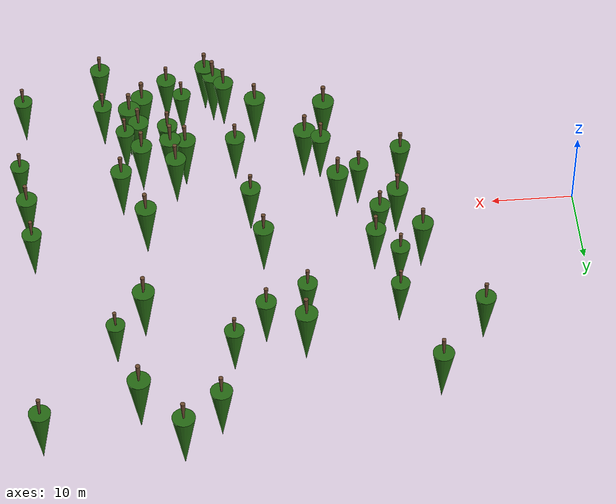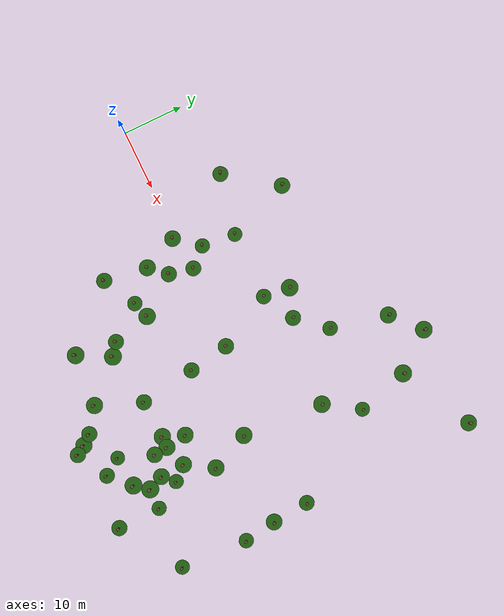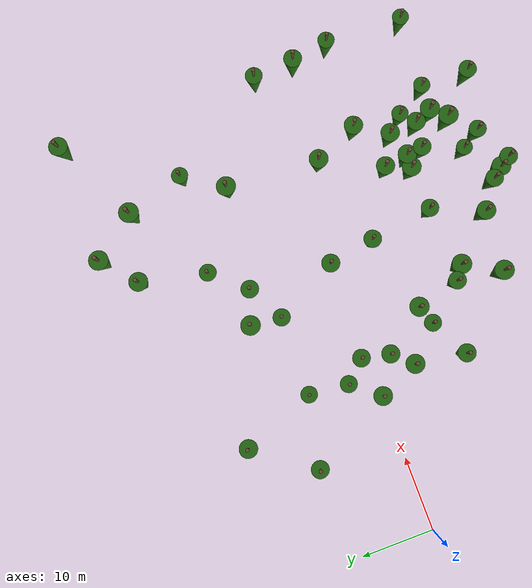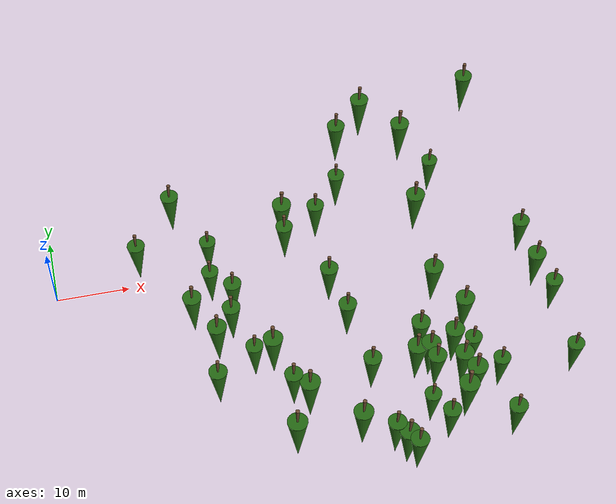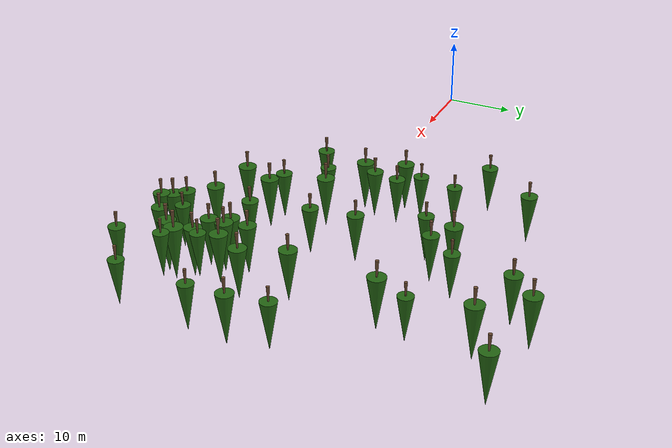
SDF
<sdf version="1.10">
 <model name="lehrforst_trees">
  <static>true</static>
  <link name="tree_0401">
   <collision name="tree_0401_collision">
    <pose>55.010 23.818 -1.102 3.142 0.014 0</pose>
    <geometry><cone><radius>0.288</radius><length>4.608</length></cone></geometry>
   </collision>
   <visual name="tree_0401_trunk">
    <pose>55.010 23.818 -1.102 3.142 0.014 0</pose>
    <geometry><cone><radius>0.288</radius><length>4.608</length></cone></geometry>
    <material>
     <ambient>0.42 0.29 0.19 1</ambient>
     <diffuse>0.42 0.29 0.19 1</diffuse>
     <specular>0.42 0.29 0.19 1</specular>
    </material>
   </visual>
   <visual name="tree_0401_leaves">
    <pose>55.010 23.818 -5.710 3.142 0 0</pose>
    <geometry><cone><radius>1.440</radius><length>8.640</length></cone></geometry>
    <material>
     <ambient>0.14 0.40 0.07 1</ambient>
     <diffuse>0.14 0.40 0.07 1</diffuse>
     <specular>0.14 0.40 0.07 1</specular>
    </material>
   </visual>
  </link>
  <link name="tree_0402">
   <collision name="tree_0402_collision">
    <pose>31.808 -17.876 -3.462 3.142 0.002 0</pose>
    <geometry><cone><radius>0.288</radius><length>4.608</length></cone></geometry>
   </collision>
   <visual name="tree_0402_trunk">
    <pose>31.808 -17.876 -3.462 3.142 0.002 0</pose>
    <geometry><cone><radius>0.288</radius><length>4.608</length></cone></geometry>
    <material>
     <ambient>0.42 0.29 0.19 1</ambient>
     <diffuse>0.42 0.29 0.19 1</diffuse>
     <specular>0.42 0.29 0.19 1</specular>
    </material>
   </visual>
   <visual name="tree_0402_leaves">
    <pose>31.808 -17.876 -8.070 3.142 0 0</pose>
    <geometry><cone><radius>1.440</radius><length>8.640</length></cone></geometry>
    <material>
     <ambient>0.14 0.40 0.07 1</ambient>
     <diffuse>0.14 0.40 0.07 1</diffuse>
     <specular>0.14 0.40 0.07 1</specular>
    </material>
   </visual>
  </link>
  <link name="tree_0405">
   <collision name="tree_0405_collision">
    <pose>28.887 -23.378 -3.951 3.142 0.013 0</pose>
    <geometry><cone><radius>0.287</radius><length>4.592</length></cone></geometry>
   </collision>
   <visual name="tree_0405_trunk">
    <pose>28.887 -23.378 -3.951 3.142 0.013 0</pose>
    <geometry><cone><radius>0.287</radius><length>4.592</length></cone></geometry>
    <material>
     <ambient>0.42 0.29 0.19 1</ambient>
     <diffuse>0.42 0.29 0.19 1</diffuse>
     <specular>0.42 0.29 0.19 1</specular>
    </material>
   </visual>
   <visual name="tree_0405_leaves">
    <pose>28.887 -23.378 -8.543 3.142 0 0</pose>
    <geometry><cone><radius>1.435</radius><length>8.610</length></cone></geometry>
    <material>
     <ambient>0.14 0.40 0.07 1</ambient>
     <diffuse>0.14 0.40 0.07 1</diffuse>
     <specular>0.14 0.40 0.07 1</specular>
    </material>
   </visual>
  </link>
  <link name="tree_0406">
   <collision name="tree_0406_collision">
    <pose>54.115 -21.471 -1.346 3.142 0.004 0</pose>
    <geometry><cone><radius>0.287</radius><length>4.592</length></cone></geometry>
   </collision>
   <visual name="tree_0406_trunk">
    <pose>54.115 -21.471 -1.346 3.142 0.004 0</pose>
    <geometry><cone><radius>0.287</radius><length>4.592</length></cone></geometry>
    <material>
     <ambient>0.42 0.29 0.19 1</ambient>
     <diffuse>0.42 0.29 0.19 1</diffuse>
     <specular>0.42 0.29 0.19 1</specular>
    </material>
   </visual>
   <visual name="tree_0406_leaves">
    <pose>54.115 -21.471 -5.938 3.142 0 0</pose>
    <geometry><cone><radius>1.435</radius><length>8.610</length></cone></geometry>
    <material>
     <ambient>0.14 0.40 0.07 1</ambient>
     <diffuse>0.14 0.40 0.07 1</diffuse>
     <specular>0.14 0.40 0.07 1</specular>
    </material>
   </visual>
  </link>
  <link name="tree_0408">
   <collision name="tree_0408_collision">
    <pose>52.384 -23.703 -1.653 3.142 0.012 0</pose>
    <geometry><cone><radius>0.287</radius><length>4.592</length></cone></geometry>
   </collision>
   <visual name="tree_0408_trunk">
    <pose>52.384 -23.703 -1.653 3.142 0.012 0</pose>
    <geometry><cone><radius>0.287</radius><length>4.592</length></cone></geometry>
    <material>
     <ambient>0.42 0.29 0.19 1</ambient>
     <diffuse>0.42 0.29 0.19 1</diffuse>
     <specular>0.42 0.29 0.19 1</specular>
    </material>
   </visual>
   <visual name="tree_0408_leaves">
    <pose>52.384 -23.703 -6.245 3.142 0 0</pose>
    <geometry><cone><radius>1.435</radius><length>8.610</length></cone></geometry>
    <material>
     <ambient>0.14 0.40 0.07 1</ambient>
     <diffuse>0.14 0.40 0.07 1</diffuse>
     <specular>0.14 0.40 0.07 1</specular>
    </material>
   </visual>
  </link>
  <link name="tree_0410">
   <collision name="tree_0410_collision">
    <pose>34.213 13.357 -3.132 3.142 0.036 0</pose>
    <geometry><cone><radius>0.285</radius><length>4.560</length></cone></geometry>
   </collision>
   <visual name="tree_0410_trunk">
    <pose>34.213 13.357 -3.132 3.142 0.036 0</pose>
    <geometry><cone><radius>0.285</radius><length>4.560</length></cone></geometry>
    <material>
     <ambient>0.42 0.29 0.19 1</ambient>
     <diffuse>0.42 0.29 0.19 1</diffuse>
     <specular>0.42 0.29 0.19 1</specular>
    </material>
   </visual>
   <visual name="tree_0410_leaves">
    <pose>34.213 13.357 -7.692 3.142 0 0</pose>
    <geometry><cone><radius>1.425</radius><length>8.550</length></cone></geometry>
    <material>
     <ambient>0.14 0.40 0.07 1</ambient>
     <diffuse>0.14 0.40 0.07 1</diffuse>
     <specular>0.14 0.40 0.07 1</specular>
    </material>
   </visual>
  </link>
  <link name="tree_0420">
   <collision name="tree_0420_collision">
    <pose>28.259 -9.927 -3.303 3.142 0.004 0</pose>
    <geometry><cone><radius>0.282</radius><length>4.512</length></cone></geometry>
   </collision>
   <visual name="tree_0420_trunk">
    <pose>28.259 -9.927 -3.303 3.142 0.004 0</pose>
    <geometry><cone><radius>0.282</radius><length>4.512</length></cone></geometry>
    <material>
     <ambient>0.42 0.29 0.19 1</ambient>
     <diffuse>0.42 0.29 0.19 1</diffuse>
     <specular>0.42 0.29 0.19 1</specular>
    </material>
   </visual>
   <visual name="tree_0420_leaves">
    <pose>28.259 -9.927 -7.815 3.142 0 0</pose>
    <geometry><cone><radius>1.410</radius><length>8.460</length></cone></geometry>
    <material>
     <ambient>0.14 0.40 0.07 1</ambient>
     <diffuse>0.14 0.40 0.07 1</diffuse>
     <specular>0.14 0.40 0.07 1</specular>
    </material>
   </visual>
  </link>
  <link name="tree_0421">
   <collision name="tree_0421_collision">
    <pose>50.062 29.993 -0.977 3.142 0.021 0</pose>
    <geometry><cone><radius>0.282</radius><length>4.512</length></cone></geometry>
   </collision>
   <visual name="tree_0421_trunk">
    <pose>50.062 29.993 -0.977 3.142 0.021 0</pose>
    <geometry><cone><radius>0.282</radius><length>4.512</length></cone></geometry>
    <material>
     <ambient>0.42 0.29 0.19 1</ambient>
     <diffuse>0.42 0.29 0.19 1</diffuse>
     <specular>0.42 0.29 0.19 1</specular>
    </material>
   </visual>
   <visual name="tree_0421_leaves">
    <pose>50.062 29.993 -5.489 3.142 0 0</pose>
    <geometry><cone><radius>1.410</radius><length>8.460</length></cone></geometry>
    <material>
     <ambient>0.14 0.40 0.07 1</ambient>
     <diffuse>0.14 0.40 0.07 1</diffuse>
     <specular>0.14 0.40 0.07 1</specular>
    </material>
   </visual>
  </link>
  <link name="tree_0422">
   <collision name="tree_0422_collision">
    <pose>53.797 9.711 -1.485 3.142 0.003 0</pose>
    <geometry><cone><radius>0.281</radius><length>4.496</length></cone></geometry>
   </collision>
   <visual name="tree_0422_trunk">
    <pose>53.797 9.711 -1.485 3.142 0.003 0</pose>
    <geometry><cone><radius>0.281</radius><length>4.496</length></cone></geometry>
    <material>
     <ambient>0.42 0.29 0.19 1</ambient>
     <diffuse>0.42 0.29 0.19 1</diffuse>
     <specular>0.42 0.29 0.19 1</specular>
    </material>
   </visual>
   <visual name="tree_0422_leaves">
    <pose>53.797 9.711 -5.981 3.142 0 0</pose>
    <geometry><cone><radius>1.405</radius><length>8.430</length></cone></geometry>
    <material>
     <ambient>0.14 0.40 0.07 1</ambient>
     <diffuse>0.14 0.40 0.07 1</diffuse>
     <specular>0.14 0.40 0.07 1</specular>
    </material>
   </visual>
  </link>
  <link name="tree_0426">
   <collision name="tree_0426_collision">
    <pose>42.952 -28.404 -3.038 3.142 0.034 0</pose>
    <geometry><cone><radius>0.280</radius><length>4.480</length></cone></geometry>
   </collision>
   <visual name="tree_0426_trunk">
    <pose>42.952 -28.404 -3.038 3.142 0.034 0</pose>
    <geometry><cone><radius>0.280</radius><length>4.480</length></cone></geometry>
    <material>
     <ambient>0.42 0.29 0.19 1</ambient>
     <diffuse>0.42 0.29 0.19 1</diffuse>
     <specular>0.42 0.29 0.19 1</specular>
    </material>
   </visual>
   <visual name="tree_0426_leaves">
    <pose>42.952 -28.404 -7.518 3.142 0 0</pose>
    <geometry><cone><radius>1.400</radius><length>8.400</length></cone></geometry>
    <material>
     <ambient>0.14 0.40 0.07 1</ambient>
     <diffuse>0.14 0.40 0.07 1</diffuse>
     <specular>0.14 0.40 0.07 1</specular>
    </material>
   </visual>
  </link>
  <link name="tree_0428">
   <collision name="tree_0428_collision">
    <pose>47.256 -16.093 -2.159 3.142 0.014 0</pose>
    <geometry><cone><radius>0.278</radius><length>4.448</length></cone></geometry>
   </collision>
   <visual name="tree_0428_trunk">
    <pose>47.256 -16.093 -2.159 3.142 0.014 0</pose>
    <geometry><cone><radius>0.278</radius><length>4.448</length></cone></geometry>
    <material>
     <ambient>0.42 0.29 0.19 1</ambient>
     <diffuse>0.42 0.29 0.19 1</diffuse>
     <specular>0.42 0.29 0.19 1</specular>
    </material>
   </visual>
   <visual name="tree_0428_leaves">
    <pose>47.256 -16.093 -6.607 3.142 0 0</pose>
    <geometry><cone><radius>1.390</radius><length>8.340</length></cone></geometry>
    <material>
     <ambient>0.14 0.40 0.07 1</ambient>
     <diffuse>0.14 0.40 0.07 1</diffuse>
     <specular>0.14 0.40 0.07 1</specular>
    </material>
   </visual>
  </link>
  <link name="tree_0431">
   <collision name="tree_0431_collision">
    <pose>37.771 -24.047 -3.336 3.142 0.031 0</pose>
    <geometry><cone><radius>0.277</radius><length>4.432</length></cone></geometry>
   </collision>
   <visual name="tree_0431_trunk">
    <pose>37.771 -24.047 -3.336 3.142 0.031 0</pose>
    <geometry><cone><radius>0.277</radius><length>4.432</length></cone></geometry>
    <material>
     <ambient>0.42 0.29 0.19 1</ambient>
     <diffuse>0.42 0.29 0.19 1</diffuse>
     <specular>0.42 0.29 0.19 1</specular>
    </material>
   </visual>
   <visual name="tree_0431_leaves">
    <pose>37.771 -24.047 -7.768 3.142 0 0</pose>
    <geometry><cone><radius>1.385</radius><length>8.310</length></cone></geometry>
    <material>
     <ambient>0.14 0.40 0.07 1</ambient>
     <diffuse>0.14 0.40 0.07 1</diffuse>
     <specular>0.14 0.40 0.07 1</specular>
    </material>
   </visual>
  </link>
  <link name="tree_0437">
   <collision name="tree_0437_collision">
    <pose>52.835 -3.960 -1.344 3.142 0.037 0</pose>
    <geometry><cone><radius>0.276</radius><length>4.416</length></cone></geometry>
   </collision>
   <visual name="tree_0437_trunk">
    <pose>52.835 -3.960 -1.344 3.142 0.037 0</pose>
    <geometry><cone><radius>0.276</radius><length>4.416</length></cone></geometry>
    <material>
     <ambient>0.42 0.29 0.19 1</ambient>
     <diffuse>0.42 0.29 0.19 1</diffuse>
     <specular>0.42 0.29 0.19 1</specular>
    </material>
   </visual>
   <visual name="tree_0437_leaves">
    <pose>52.835 -3.960 -5.760 3.142 0 0</pose>
    <geometry><cone><radius>1.380</radius><length>8.280</length></cone></geometry>
    <material>
     <ambient>0.14 0.40 0.07 1</ambient>
     <diffuse>0.14 0.40 0.07 1</diffuse>
     <specular>0.14 0.40 0.07 1</specular>
    </material>
   </visual>
  </link>
  <link name="tree_0439">
   <collision name="tree_0439_collision">
    <pose>21.001 -6.414 -3.221 3.142 0.031 0</pose>
    <geometry><cone><radius>0.276</radius><length>4.416</length></cone></geometry>
   </collision>
   <visual name="tree_0439_trunk">
    <pose>21.001 -6.414 -3.221 3.142 0.031 0</pose>
    <geometry><cone><radius>0.276</radius><length>4.416</length></cone></geometry>
    <material>
     <ambient>0.42 0.29 0.19 1</ambient>
     <diffuse>0.42 0.29 0.19 1</diffuse>
     <specular>0.42 0.29 0.19 1</specular>
    </material>
   </visual>
   <visual name="tree_0439_leaves">
    <pose>21.001 -6.414 -7.637 3.142 0 0</pose>
    <geometry><cone><radius>1.380</radius><length>8.280</length></cone></geometry>
    <material>
     <ambient>0.14 0.40 0.07 1</ambient>
     <diffuse>0.14 0.40 0.07 1</diffuse>
     <specular>0.14 0.40 0.07 1</specular>
    </material>
   </visual>
  </link>
  <link name="tree_0445">
   <collision name="tree_0445_collision">
    <pose>49.154 -16.143 -1.915 3.142 0.010 0</pose>
    <geometry><cone><radius>0.274</radius><length>4.384</length></cone></geometry>
   </collision>
   <visual name="tree_0445_trunk">
    <pose>49.154 -16.143 -1.915 3.142 0.010 0</pose>
    <geometry><cone><radius>0.274</radius><length>4.384</length></cone></geometry>
    <material>
     <ambient>0.42 0.29 0.19 1</ambient>
     <diffuse>0.42 0.29 0.19 1</diffuse>
     <specular>0.42 0.29 0.19 1</specular>
    </material>
   </visual>
   <visual name="tree_0445_leaves">
    <pose>49.154 -16.143 -6.299 3.142 0 0</pose>
    <geometry><cone><radius>1.370</radius><length>8.220</length></cone></geometry>
    <material>
     <ambient>0.14 0.40 0.07 1</ambient>
     <diffuse>0.14 0.40 0.07 1</diffuse>
     <specular>0.14 0.40 0.07 1</specular>
    </material>
   </visual>
  </link>
  <link name="tree_0446">
   <collision name="tree_0446_collision">
    <pose>45.372 25.881 -1.613 3.142 0.019 0</pose>
    <geometry><cone><radius>0.273</radius><length>4.368</length></cone></geometry>
   </collision>
   <visual name="tree_0446_trunk">
    <pose>45.372 25.881 -1.613 3.142 0.019 0</pose>
    <geometry><cone><radius>0.273</radius><length>4.368</length></cone></geometry>
    <material>
     <ambient>0.42 0.29 0.19 1</ambient>
     <diffuse>0.42 0.29 0.19 1</diffuse>
     <specular>0.42 0.29 0.19 1</specular>
    </material>
   </visual>
   <visual name="tree_0446_leaves">
    <pose>45.372 25.881 -5.981 3.142 0 0</pose>
    <geometry><cone><radius>1.365</radius><length>8.190</length></cone></geometry>
    <material>
     <ambient>0.14 0.40 0.07 1</ambient>
     <diffuse>0.14 0.40 0.07 1</diffuse>
     <specular>0.14 0.40 0.07 1</specular>
    </material>
   </visual>
  </link>
  <link name="tree_0450">
   <collision name="tree_0450_collision">
    <pose>52.846 -14.900 -1.543 3.142 0.002 0</pose>
    <geometry><cone><radius>0.272</radius><length>4.352</length></cone></geometry>
   </collision>
   <visual name="tree_0450_trunk">
    <pose>52.846 -14.900 -1.543 3.142 0.002 0</pose>
    <geometry><cone><radius>0.272</radius><length>4.352</length></cone></geometry>
    <material>
     <ambient>0.42 0.29 0.19 1</ambient>
     <diffuse>0.42 0.29 0.19 1</diffuse>
     <specular>0.42 0.29 0.19 1</specular>
    </material>
   </visual>
   <visual name="tree_0450_leaves">
    <pose>52.846 -14.900 -5.895 3.142 0 0</pose>
    <geometry><cone><radius>1.360</radius><length>8.160</length></cone></geometry>
    <material>
     <ambient>0.14 0.40 0.07 1</ambient>
     <diffuse>0.14 0.40 0.07 1</diffuse>
     <specular>0.14 0.40 0.07 1</specular>
    </material>
   </visual>
  </link>
  <link name="tree_0452">
   <collision name="tree_0452_collision">
    <pose>55.614 -10.321 -1.199 3.142 0.025 0</pose>
    <geometry><cone><radius>0.272</radius><length>4.352</length></cone></geometry>
   </collision>
   <visual name="tree_0452_trunk">
    <pose>55.614 -10.321 -1.199 3.142 0.025 0</pose>
    <geometry><cone><radius>0.272</radius><length>4.352</length></cone></geometry>
    <material>
     <ambient>0.42 0.29 0.19 1</ambient>
     <diffuse>0.42 0.29 0.19 1</diffuse>
     <specular>0.42 0.29 0.19 1</specular>
    </material>
   </visual>
   <visual name="tree_0452_leaves">
    <pose>55.614 -10.321 -5.551 3.142 0 0</pose>
    <geometry><cone><radius>1.360</radius><length>8.160</length></cone></geometry>
    <material>
     <ambient>0.14 0.40 0.07 1</ambient>
     <diffuse>0.14 0.40 0.07 1</diffuse>
     <specular>0.14 0.40 0.07 1</specular>
    </material>
   </visual>
  </link>
  <link name="tree_0454">
   <collision name="tree_0454_collision">
    <pose>18.416 -0.568 -3.472 3.142 0.028 0</pose>
    <geometry><cone><radius>0.271</radius><length>4.336</length></cone></geometry>
   </collision>
   <visual name="tree_0454_trunk">
    <pose>18.416 -0.568 -3.472 3.142 0.028 0</pose>
    <geometry><cone><radius>0.271</radius><length>4.336</length></cone></geometry>
    <material>
     <ambient>0.42 0.29 0.19 1</ambient>
     <diffuse>0.42 0.29 0.19 1</diffuse>
     <specular>0.42 0.29 0.19 1</specular>
    </material>
   </visual>
   <visual name="tree_0454_leaves">
    <pose>18.416 -0.568 -7.808 3.142 0 0</pose>
    <geometry><cone><radius>1.355</radius><length>8.130</length></cone></geometry>
    <material>
     <ambient>0.14 0.40 0.07 1</ambient>
     <diffuse>0.14 0.40 0.07 1</diffuse>
     <specular>0.14 0.40 0.07 1</specular>
    </material>
   </visual>
  </link>
  <link name="tree_0459">
   <collision name="tree_0459_collision">
    <pose>18.152 19.706 -4.663 3.142 0.035 0</pose>
    <geometry><cone><radius>0.269</radius><length>4.304</length></cone></geometry>
   </collision>
   <visual name="tree_0459_trunk">
    <pose>18.152 19.706 -4.663 3.142 0.035 0</pose>
    <geometry><cone><radius>0.269</radius><length>4.304</length></cone></geometry>
    <material>
     <ambient>0.42 0.29 0.19 1</ambient>
     <diffuse>0.42 0.29 0.19 1</diffuse>
     <specular>0.42 0.29 0.19 1</specular>
    </material>
   </visual>
   <visual name="tree_0459_leaves">
    <pose>18.152 19.706 -8.967 3.142 0 0</pose>
    <geometry><cone><radius>1.345</radius><length>8.070</length></cone></geometry>
    <material>
     <ambient>0.14 0.40 0.07 1</ambient>
     <diffuse>0.14 0.40 0.07 1</diffuse>
     <specular>0.14 0.40 0.07 1</specular>
    </material>
   </visual>
  </link>
  <link name="tree_0460">
   <collision name="tree_0460_collision">
    <pose>48.636 -12.577 -1.810 3.142 0.025 0</pose>
    <geometry><cone><radius>0.268</radius><length>4.288</length></cone></geometry>
   </collision>
   <visual name="tree_0460_trunk">
    <pose>48.636 -12.577 -1.810 3.142 0.025 0</pose>
    <geometry><cone><radius>0.268</radius><length>4.288</length></cone></geometry>
    <material>
     <ambient>0.42 0.29 0.19 1</ambient>
     <diffuse>0.42 0.29 0.19 1</diffuse>
     <specular>0.42 0.29 0.19 1</specular>
    </material>
   </visual>
   <visual name="tree_0460_leaves">
    <pose>48.636 -12.577 -6.098 3.142 0 0</pose>
    <geometry><cone><radius>1.340</radius><length>8.040</length></cone></geometry>
    <material>
     <ambient>0.14 0.40 0.07 1</ambient>
     <diffuse>0.14 0.40 0.07 1</diffuse>
     <specular>0.14 0.40 0.07 1</specular>
    </material>
   </visual>
  </link>
  <link name="tree_0464">
   <collision name="tree_0464_collision">
    <pose>53.045 -18.956 -1.395 3.142 0.033 0</pose>
    <geometry><cone><radius>0.268</radius><length>4.288</length></cone></geometry>
   </collision>
   <visual name="tree_0464_trunk">
    <pose>53.045 -18.956 -1.395 3.142 0.033 0</pose>
    <geometry><cone><radius>0.268</radius><length>4.288</length></cone></geometry>
    <material>
     <ambient>0.42 0.29 0.19 1</ambient>
     <diffuse>0.42 0.29 0.19 1</diffuse>
     <specular>0.42 0.29 0.19 1</specular>
    </material>
   </visual>
   <visual name="tree_0464_leaves">
    <pose>53.045 -18.956 -5.683 3.142 0 0</pose>
    <geometry><cone><radius>1.340</radius><length>8.040</length></cone></geometry>
    <material>
     <ambient>0.14 0.40 0.07 1</ambient>
     <diffuse>0.14 0.40 0.07 1</diffuse>
     <specular>0.14 0.40 0.07 1</specular>
    </material>
   </visual>
  </link>
  <link name="tree_0466">
   <collision name="tree_0466_collision">
    <pose>66.700 29.633 1.071 3.142 0.003 0</pose>
    <geometry><cone><radius>0.267</radius><length>4.272</length></cone></geometry>
   </collision>
   <visual name="tree_0466_trunk">
    <pose>66.700 29.633 1.071 3.142 0.003 0</pose>
    <geometry><cone><radius>0.267</radius><length>4.272</length></cone></geometry>
    <material>
     <ambient>0.42 0.29 0.19 1</ambient>
     <diffuse>0.42 0.29 0.19 1</diffuse>
     <specular>0.42 0.29 0.19 1</specular>
    </material>
   </visual>
   <visual name="tree_0466_leaves">
    <pose>66.700 29.633 -3.201 3.142 0 0</pose>
    <geometry><cone><radius>1.335</radius><length>8.010</length></cone></geometry>
    <material>
     <ambient>0.14 0.40 0.07 1</ambient>
     <diffuse>0.14 0.40 0.07 1</diffuse>
     <specular>0.14 0.40 0.07 1</specular>
    </material>
   </visual>
  </link>
  <link name="tree_0474">
   <collision name="tree_0474_collision">
    <pose>67.517 -5.567 -0.213 3.142 0.034 0</pose>
    <geometry><cone><radius>0.265</radius><length>4.240</length></cone></geometry>
   </collision>
   <visual name="tree_0474_trunk">
    <pose>67.517 -5.567 -0.213 3.142 0.034 0</pose>
    <geometry><cone><radius>0.265</radius><length>4.240</length></cone></geometry>
    <material>
     <ambient>0.42 0.29 0.19 1</ambient>
     <diffuse>0.42 0.29 0.19 1</diffuse>
     <specular>0.42 0.29 0.19 1</specular>
    </material>
   </visual>
   <visual name="tree_0474_leaves">
    <pose>67.517 -5.567 -4.453 3.142 0 0</pose>
    <geometry><cone><radius>1.325</radius><length>7.950</length></cone></geometry>
    <material>
     <ambient>0.14 0.40 0.07 1</ambient>
     <diffuse>0.14 0.40 0.07 1</diffuse>
     <specular>0.14 0.40 0.07 1</specular>
    </material>
   </visual>
  </link>
  <link name="tree_0475">
   <collision name="tree_0475_collision">
    <pose>38.407 -0.325 -2.389 3.142 0.004 0</pose>
    <geometry><cone><radius>0.264</radius><length>4.224</length></cone></geometry>
   </collision>
   <visual name="tree_0475_trunk">
    <pose>38.407 -0.325 -2.389 3.142 0.004 0</pose>
    <geometry><cone><radius>0.264</radius><length>4.224</length></cone></geometry>
    <material>
     <ambient>0.42 0.29 0.19 1</ambient>
     <diffuse>0.42 0.29 0.19 1</diffuse>
     <specular>0.42 0.29 0.19 1</specular>
    </material>
   </visual>
   <visual name="tree_0475_leaves">
    <pose>38.407 -0.325 -6.613 3.142 0 0</pose>
    <geometry><cone><radius>1.320</radius><length>7.920</length></cone></geometry>
    <material>
     <ambient>0.14 0.40 0.07 1</ambient>
     <diffuse>0.14 0.40 0.07 1</diffuse>
     <specular>0.14 0.40 0.07 1</specular>
    </material>
   </visual>
  </link>
  <link name="tree_0478">
   <collision name="tree_0478_collision">
    <pose>49.375 -18.440 -1.707 3.142 0.008 0</pose>
    <geometry><cone><radius>0.263</radius><length>4.208</length></cone></geometry>
   </collision>
   <visual name="tree_0478_trunk">
    <pose>49.375 -18.440 -1.707 3.142 0.008 0</pose>
    <geometry><cone><radius>0.263</radius><length>4.208</length></cone></geometry>
    <material>
     <ambient>0.42 0.29 0.19 1</ambient>
     <diffuse>0.42 0.29 0.19 1</diffuse>
     <specular>0.42 0.29 0.19 1</specular>
    </material>
   </visual>
   <visual name="tree_0478_leaves">
    <pose>49.375 -18.440 -5.915 3.142 0 0</pose>
    <geometry><cone><radius>1.315</radius><length>7.890</length></cone></geometry>
    <material>
     <ambient>0.14 0.40 0.07 1</ambient>
     <diffuse>0.14 0.40 0.07 1</diffuse>
     <specular>0.14 0.40 0.07 1</specular>
    </material>
   </visual>
  </link>
  <link name="tree_0482">
   <collision name="tree_0482_collision">
    <pose>23.525 -3.666 -3.075 3.142 0.018 0</pose>
    <geometry><cone><radius>0.262</radius><length>4.192</length></cone></geometry>
   </collision>
   <visual name="tree_0482_trunk">
    <pose>23.525 -3.666 -3.075 3.142 0.018 0</pose>
    <geometry><cone><radius>0.262</radius><length>4.192</length></cone></geometry>
    <material>
     <ambient>0.42 0.29 0.19 1</ambient>
     <diffuse>0.42 0.29 0.19 1</diffuse>
     <specular>0.42 0.29 0.19 1</specular>
    </material>
   </visual>
   <visual name="tree_0482_leaves">
    <pose>23.525 -3.666 -7.267 3.142 0 0</pose>
    <geometry><cone><radius>1.310</radius><length>7.860</length></cone></geometry>
    <material>
     <ambient>0.14 0.40 0.07 1</ambient>
     <diffuse>0.14 0.40 0.07 1</diffuse>
     <specular>0.14 0.40 0.07 1</specular>
    </material>
   </visual>
  </link>
  <link name="tree_0483">
   <collision name="tree_0483_collision">
    <pose>19.870 -13.776 -3.280 3.142 0.019 0</pose>
    <geometry><cone><radius>0.262</radius><length>4.192</length></cone></geometry>
   </collision>
   <visual name="tree_0483_trunk">
    <pose>19.870 -13.776 -3.280 3.142 0.019 0</pose>
    <geometry><cone><radius>0.262</radius><length>4.192</length></cone></geometry>
    <material>
     <ambient>0.42 0.29 0.19 1</ambient>
     <diffuse>0.42 0.29 0.19 1</diffuse>
     <specular>0.42 0.29 0.19 1</specular>
    </material>
   </visual>
   <visual name="tree_0483_leaves">
    <pose>19.870 -13.776 -7.472 3.142 0 0</pose>
    <geometry><cone><radius>1.310</radius><length>7.860</length></cone></geometry>
    <material>
     <ambient>0.14 0.40 0.07 1</ambient>
     <diffuse>0.14 0.40 0.07 1</diffuse>
     <specular>0.14 0.40 0.07 1</specular>
    </material>
   </visual>
  </link>
  <link name="tree_0487">
   <collision name="tree_0487_collision">
    <pose>43.932 -29.910 -2.894 3.142 0.020 0</pose>
    <geometry><cone><radius>0.261</radius><length>4.176</length></cone></geometry>
   </collision>
   <visual name="tree_0487_trunk">
    <pose>43.932 -29.910 -2.894 3.142 0.020 0</pose>
    <geometry><cone><radius>0.261</radius><length>4.176</length></cone></geometry>
    <material>
     <ambient>0.42 0.29 0.19 1</ambient>
     <diffuse>0.42 0.29 0.19 1</diffuse>
     <specular>0.42 0.29 0.19 1</specular>
    </material>
   </visual>
   <visual name="tree_0487_leaves">
    <pose>43.932 -29.910 -7.070 3.142 0 0</pose>
    <geometry><cone><radius>1.305</radius><length>7.830</length></cone></geometry>
    <material>
     <ambient>0.14 0.40 0.07 1</ambient>
     <diffuse>0.14 0.40 0.07 1</diffuse>
     <specular>0.14 0.40 0.07 1</specular>
    </material>
   </visual>
  </link>
  <link name="tree_0488">
   <collision name="tree_0488_collision">
    <pose>11.943 11.284 -4.616 3.142 0.015 0</pose>
    <geometry><cone><radius>0.260</radius><length>4.160</length></cone></geometry>
   </collision>
   <visual name="tree_0488_trunk">
    <pose>11.943 11.284 -4.616 3.142 0.015 0</pose>
    <geometry><cone><radius>0.260</radius><length>4.160</length></cone></geometry>
    <material>
     <ambient>0.42 0.29 0.19 1</ambient>
     <diffuse>0.42 0.29 0.19 1</diffuse>
     <specular>0.42 0.29 0.19 1</specular>
    </material>
   </visual>
   <visual name="tree_0488_leaves">
    <pose>11.943 11.284 -8.776 3.142 0 0</pose>
    <geometry><cone><radius>1.300</radius><length>7.800</length></cone></geometry>
    <material>
     <ambient>0.14 0.40 0.07 1</ambient>
     <diffuse>0.14 0.40 0.07 1</diffuse>
     <specular>0.14 0.40 0.07 1</specular>
    </material>
   </visual>
  </link>
  <link name="tree_0490">
   <collision name="tree_0490_collision">
    <pose>41.663 -26.793 -2.926 3.142 0.030 0</pose>
    <geometry><cone><radius>0.260</radius><length>4.160</length></cone></geometry>
   </collision>
   <visual name="tree_0490_trunk">
    <pose>41.663 -26.793 -2.926 3.142 0.030 0</pose>
    <geometry><cone><radius>0.260</radius><length>4.160</length></cone></geometry>
    <material>
     <ambient>0.42 0.29 0.19 1</ambient>
     <diffuse>0.42 0.29 0.19 1</diffuse>
     <specular>0.42 0.29 0.19 1</specular>
    </material>
   </visual>
   <visual name="tree_0490_leaves">
    <pose>41.663 -26.793 -7.086 3.142 0 0</pose>
    <geometry><cone><radius>1.300</radius><length>7.800</length></cone></geometry>
    <material>
     <ambient>0.14 0.40 0.07 1</ambient>
     <diffuse>0.14 0.40 0.07 1</diffuse>
     <specular>0.14 0.40 0.07 1</specular>
    </material>
   </visual>
  </link>
  <link name="tree_0493">
   <collision name="tree_0493_collision">
    <pose>39.534 -7.108 -2.277 3.142 0.016 0</pose>
    <geometry><cone><radius>0.258</radius><length>4.128</length></cone></geometry>
   </collision>
   <visual name="tree_0493_trunk">
    <pose>39.534 -7.108 -2.277 3.142 0.016 0</pose>
    <geometry><cone><radius>0.258</radius><length>4.128</length></cone></geometry>
    <material>
     <ambient>0.42 0.29 0.19 1</ambient>
     <diffuse>0.42 0.29 0.19 1</diffuse>
     <specular>0.42 0.29 0.19 1</specular>
    </material>
   </visual>
   <visual name="tree_0493_leaves">
    <pose>39.534 -7.108 -6.405 3.142 0 0</pose>
    <geometry><cone><radius>1.290</radius><length>7.740</length></cone></geometry>
    <material>
     <ambient>0.14 0.40 0.07 1</ambient>
     <diffuse>0.14 0.40 0.07 1</diffuse>
     <specular>0.14 0.40 0.07 1</specular>
    </material>
   </visual>
  </link>
  <link name="tree_0494">
   <collision name="tree_0494_collision">
    <pose>40.842 -16.412 -2.611 3.142 0.019 0</pose>
    <geometry><cone><radius>0.258</radius><length>4.128</length></cone></geometry>
   </collision>
   <visual name="tree_0494_trunk">
    <pose>40.842 -16.412 -2.611 3.142 0.019 0</pose>
    <geometry><cone><radius>0.258</radius><length>4.128</length></cone></geometry>
    <material>
     <ambient>0.42 0.29 0.19 1</ambient>
     <diffuse>0.42 0.29 0.19 1</diffuse>
     <specular>0.42 0.29 0.19 1</specular>
    </material>
   </visual>
   <visual name="tree_0494_leaves">
    <pose>40.842 -16.412 -6.739 3.142 0 0</pose>
    <geometry><cone><radius>1.290</radius><length>7.740</length></cone></geometry>
    <material>
     <ambient>0.14 0.40 0.07 1</ambient>
     <diffuse>0.14 0.40 0.07 1</diffuse>
     <specular>0.14 0.40 0.07 1</specular>
    </material>
   </visual>
  </link>
  <link name="tree_0497">
   <collision name="tree_0497_collision">
    <pose>29.845 -16.349 -3.223 3.142 0.009 0</pose>
    <geometry><cone><radius>0.258</radius><length>4.128</length></cone></geometry>
   </collision>
   <visual name="tree_0497_trunk">
    <pose>29.845 -16.349 -3.223 3.142 0.009 0</pose>
    <geometry><cone><radius>0.258</radius><length>4.128</length></cone></geometry>
    <material>
     <ambient>0.42 0.29 0.19 1</ambient>
     <diffuse>0.42 0.29 0.19 1</diffuse>
     <specular>0.42 0.29 0.19 1</specular>
    </material>
   </visual>
   <visual name="tree_0497_leaves">
    <pose>29.845 -16.349 -7.351 3.142 0 0</pose>
    <geometry><cone><radius>1.290</radius><length>7.740</length></cone></geometry>
    <material>
     <ambient>0.14 0.40 0.07 1</ambient>
     <diffuse>0.14 0.40 0.07 1</diffuse>
     <specular>0.14 0.40 0.07 1</specular>
    </material>
   </visual>
  </link>
  <link name="tree_0498">
   <collision name="tree_0498_collision">
    <pose>38.997 11.656 -2.509 3.142 0.009 0</pose>
    <geometry><cone><radius>0.258</radius><length>4.128</length></cone></geometry>
   </collision>
   <visual name="tree_0498_trunk">
    <pose>38.997 11.656 -2.509 3.142 0.009 0</pose>
    <geometry><cone><radius>0.258</radius><length>4.128</length></cone></geometry>
    <material>
     <ambient>0.42 0.29 0.19 1</ambient>
     <diffuse>0.42 0.29 0.19 1</diffuse>
     <specular>0.42 0.29 0.19 1</specular>
    </material>
   </visual>
   <visual name="tree_0498_leaves">
    <pose>38.997 11.656 -6.637 3.142 0 0</pose>
    <geometry><cone><radius>1.290</radius><length>7.740</length></cone></geometry>
    <material>
     <ambient>0.14 0.40 0.07 1</ambient>
     <diffuse>0.14 0.40 0.07 1</diffuse>
     <specular>0.14 0.40 0.07 1</specular>
    </material>
   </visual>
  </link>
  <link name="tree_0504">
   <collision name="tree_0504_collision">
    <pose>57.590 -28.674 -1.242 3.142 0.001 0</pose>
    <geometry><cone><radius>0.256</radius><length>4.096</length></cone></geometry>
   </collision>
   <visual name="tree_0504_trunk">
    <pose>57.590 -28.674 -1.242 3.142 0.001 0</pose>
    <geometry><cone><radius>0.256</radius><length>4.096</length></cone></geometry>
    <material>
     <ambient>0.42 0.29 0.19 1</ambient>
     <diffuse>0.42 0.29 0.19 1</diffuse>
     <specular>0.42 0.29 0.19 1</specular>
    </material>
   </visual>
   <visual name="tree_0504_leaves">
    <pose>57.590 -28.674 -5.338 3.142 0 0</pose>
    <geometry><cone><radius>1.280</radius><length>7.680</length></cone></geometry>
    <material>
     <ambient>0.14 0.40 0.07 1</ambient>
     <diffuse>0.14 0.40 0.07 1</diffuse>
     <specular>0.14 0.40 0.07 1</specular>
    </material>
   </visual>
  </link>
  <link name="tree_0505">
   <collision name="tree_0505_collision">
    <pose>24.427 0.398 -3.055 3.142 0.037 0</pose>
    <geometry><cone><radius>0.256</radius><length>4.096</length></cone></geometry>
   </collision>
   <visual name="tree_0505_trunk">
    <pose>24.427 0.398 -3.055 3.142 0.037 0</pose>
    <geometry><cone><radius>0.256</radius><length>4.096</length></cone></geometry>
    <material>
     <ambient>0.42 0.29 0.19 1</ambient>
     <diffuse>0.42 0.29 0.19 1</diffuse>
     <specular>0.42 0.29 0.19 1</specular>
    </material>
   </visual>
   <visual name="tree_0505_leaves">
    <pose>24.427 0.398 -7.151 3.142 0 0</pose>
    <geometry><cone><radius>1.280</radius><length>7.680</length></cone></geometry>
    <material>
     <ambient>0.14 0.40 0.07 1</ambient>
     <diffuse>0.14 0.40 0.07 1</diffuse>
     <specular>0.14 0.40 0.07 1</specular>
    </material>
   </visual>
  </link>
  <link name="tree_0515">
   <collision name="tree_0515_collision">
    <pose>49.077 -26.962 -2.033 3.142 0.007 0</pose>
    <geometry><cone><radius>0.252</radius><length>4.032</length></cone></geometry>
   </collision>
   <visual name="tree_0515_trunk">
    <pose>49.077 -26.962 -2.033 3.142 0.007 0</pose>
    <geometry><cone><radius>0.252</radius><length>4.032</length></cone></geometry>
    <material>
     <ambient>0.42 0.29 0.19 1</ambient>
     <diffuse>0.42 0.29 0.19 1</diffuse>
     <specular>0.42 0.29 0.19 1</specular>
    </material>
   </visual>
   <visual name="tree_0515_leaves">
    <pose>49.077 -26.962 -6.065 3.142 0 0</pose>
    <geometry><cone><radius>1.260</radius><length>7.560</length></cone></geometry>
    <material>
     <ambient>0.14 0.40 0.07 1</ambient>
     <diffuse>0.14 0.40 0.07 1</diffuse>
     <specular>0.14 0.40 0.07 1</specular>
    </material>
   </visual>
  </link>
  <link name="tree_0519">
   <collision name="tree_0519_collision">
    <pose>33.703 8.857 -2.776 3.142 0.010 0</pose>
    <geometry><cone><radius>0.251</radius><length>4.016</length></cone></geometry>
   </collision>
   <visual name="tree_0519_trunk">
    <pose>33.703 8.857 -2.776 3.142 0.010 0</pose>
    <geometry><cone><radius>0.251</radius><length>4.016</length></cone></geometry>
    <material>
     <ambient>0.42 0.29 0.19 1</ambient>
     <diffuse>0.42 0.29 0.19 1</diffuse>
     <specular>0.42 0.29 0.19 1</specular>
    </material>
   </visual>
   <visual name="tree_0519_leaves">
    <pose>33.703 8.857 -6.792 3.142 0 0</pose>
    <geometry><cone><radius>1.255</radius><length>7.530</length></cone></geometry>
    <material>
     <ambient>0.14 0.40 0.07 1</ambient>
     <diffuse>0.14 0.40 0.07 1</diffuse>
     <specular>0.14 0.40 0.07 1</specular>
    </material>
   </visual>
  </link>
  <link name="tree_0529">
   <collision name="tree_0529_collision">
    <pose>67.027 0.525 -0.060 3.142 0.014 0</pose>
    <geometry><cone><radius>0.248</radius><length>3.968</length></cone></geometry>
   </collision>
   <visual name="tree_0529_trunk">
    <pose>67.027 0.525 -0.060 3.142 0.014 0</pose>
    <geometry><cone><radius>0.248</radius><length>3.968</length></cone></geometry>
    <material>
     <ambient>0.42 0.29 0.19 1</ambient>
     <diffuse>0.42 0.29 0.19 1</diffuse>
     <specular>0.42 0.29 0.19 1</specular>
    </material>
   </visual>
   <visual name="tree_0529_leaves">
    <pose>67.027 0.525 -4.028 3.142 0 0</pose>
    <geometry><cone><radius>1.240</radius><length>7.440</length></cone></geometry>
    <material>
     <ambient>0.14 0.40 0.07 1</ambient>
     <diffuse>0.14 0.40 0.07 1</diffuse>
     <specular>0.14 0.40 0.07 1</specular>
    </material>
   </visual>
  </link>
  <link name="tree_0530">
   <collision name="tree_0530_collision">
    <pose>25.490 -10.808 -3.006 3.142 0.027 0</pose>
    <geometry><cone><radius>0.248</radius><length>3.968</length></cone></geometry>
   </collision>
   <visual name="tree_0530_trunk">
    <pose>25.490 -10.808 -3.006 3.142 0.027 0</pose>
    <geometry><cone><radius>0.248</radius><length>3.968</length></cone></geometry>
    <material>
     <ambient>0.42 0.29 0.19 1</ambient>
     <diffuse>0.42 0.29 0.19 1</diffuse>
     <specular>0.42 0.29 0.19 1</specular>
    </material>
   </visual>
   <visual name="tree_0530_leaves">
    <pose>25.490 -10.808 -6.974 3.142 0 0</pose>
    <geometry><cone><radius>1.240</radius><length>7.440</length></cone></geometry>
    <material>
     <ambient>0.14 0.40 0.07 1</ambient>
     <diffuse>0.14 0.40 0.07 1</diffuse>
     <specular>0.14 0.40 0.07 1</specular>
    </material>
   </visual>
  </link>
  <link name="tree_0531">
   <collision name="tree_0531_collision">
    <pose>43.204 16.358 -2.029 3.142 0.001 0</pose>
    <geometry><cone><radius>0.247</radius><length>3.952</length></cone></geometry>
   </collision>
   <visual name="tree_0531_trunk">
    <pose>43.204 16.358 -2.029 3.142 0.001 0</pose>
    <geometry><cone><radius>0.247</radius><length>3.952</length></cone></geometry>
    <material>
     <ambient>0.42 0.29 0.19 1</ambient>
     <diffuse>0.42 0.29 0.19 1</diffuse>
     <specular>0.42 0.29 0.19 1</specular>
    </material>
   </visual>
   <visual name="tree_0531_leaves">
    <pose>43.204 16.358 -5.981 3.142 0 0</pose>
    <geometry><cone><radius>1.235</radius><length>7.410</length></cone></geometry>
    <material>
     <ambient>0.14 0.40 0.07 1</ambient>
     <diffuse>0.14 0.40 0.07 1</diffuse>
     <specular>0.14 0.40 0.07 1</specular>
    </material>
   </visual>
  </link>
  <link name="tree_0534">
   <collision name="tree_0534_collision">
    <pose>21.675 3.348 -3.290 3.142 0.002 0</pose>
    <geometry><cone><radius>0.246</radius><length>3.936</length></cone></geometry>
   </collision>
   <visual name="tree_0534_trunk">
    <pose>21.675 3.348 -3.290 3.142 0.002 0</pose>
    <geometry><cone><radius>0.246</radius><length>3.936</length></cone></geometry>
    <material>
     <ambient>0.42 0.29 0.19 1</ambient>
     <diffuse>0.42 0.29 0.19 1</diffuse>
     <specular>0.42 0.29 0.19 1</specular>
    </material>
   </visual>
   <visual name="tree_0534_leaves">
    <pose>21.675 3.348 -7.226 3.142 0 0</pose>
    <geometry><cone><radius>1.230</radius><length>7.380</length></cone></geometry>
    <material>
     <ambient>0.14 0.40 0.07 1</ambient>
     <diffuse>0.14 0.40 0.07 1</diffuse>
     <specular>0.14 0.40 0.07 1</specular>
    </material>
   </visual>
  </link>
  <link name="tree_0540">
   <collision name="tree_0540_collision">
    <pose>68.226 -10.901 0.190 3.142 0.002 0</pose>
    <geometry><cone><radius>0.241</radius><length>3.856</length></cone></geometry>
   </collision>
   <visual name="tree_0540_trunk">
    <pose>68.226 -10.901 0.190 3.142 0.002 0</pose>
    <geometry><cone><radius>0.241</radius><length>3.856</length></cone></geometry>
    <material>
     <ambient>0.42 0.29 0.19 1</ambient>
     <diffuse>0.42 0.29 0.19 1</diffuse>
     <specular>0.42 0.29 0.19 1</specular>
    </material>
   </visual>
   <visual name="tree_0540_leaves">
    <pose>68.226 -10.901 -3.666 3.142 0 0</pose>
    <geometry><cone><radius>1.205</radius><length>7.230</length></cone></geometry>
    <material>
     <ambient>0.14 0.40 0.07 1</ambient>
     <diffuse>0.14 0.40 0.07 1</diffuse>
     <specular>0.14 0.40 0.07 1</specular>
    </material>
   </visual>
  </link>
  <link name="tree_0545">
   <collision name="tree_0545_collision">
    <pose>22.259 9.050 -3.615 3.142 0.013 0</pose>
    <geometry><cone><radius>0.240</radius><length>3.840</length></cone></geometry>
   </collision>
   <visual name="tree_0545_trunk">
    <pose>22.259 9.050 -3.615 3.142 0.013 0</pose>
    <geometry><cone><radius>0.240</radius><length>3.840</length></cone></geometry>
    <material>
     <ambient>0.42 0.29 0.19 1</ambient>
     <diffuse>0.42 0.29 0.19 1</diffuse>
     <specular>0.42 0.29 0.19 1</specular>
    </material>
   </visual>
   <visual name="tree_0545_leaves">
    <pose>22.259 9.050 -7.455 3.142 0 0</pose>
    <geometry><cone><radius>1.200</radius><length>7.200</length></cone></geometry>
    <material>
     <ambient>0.14 0.40 0.07 1</ambient>
     <diffuse>0.14 0.40 0.07 1</diffuse>
     <specular>0.14 0.40 0.07 1</specular>
    </material>
   </visual>
  </link>
  <link name="tree_0547">
   <collision name="tree_0547_collision">
    <pose>54.799 -17.084 -0.939 3.142 0.023 0</pose>
    <geometry><cone><radius>0.239</radius><length>3.824</length></cone></geometry>
   </collision>
   <visual name="tree_0547_trunk">
    <pose>54.799 -17.084 -0.939 3.142 0.023 0</pose>
    <geometry><cone><radius>0.239</radius><length>3.824</length></cone></geometry>
    <material>
     <ambient>0.42 0.29 0.19 1</ambient>
     <diffuse>0.42 0.29 0.19 1</diffuse>
     <specular>0.42 0.29 0.19 1</specular>
    </material>
   </visual>
   <visual name="tree_0547_leaves">
    <pose>54.799 -17.084 -4.763 3.142 0 0</pose>
    <geometry><cone><radius>1.195</radius><length>7.170</length></cone></geometry>
    <material>
     <ambient>0.14 0.40 0.07 1</ambient>
     <diffuse>0.14 0.40 0.07 1</diffuse>
     <specular>0.14 0.40 0.07 1</specular>
    </material>
   </visual>
  </link>
  <link name="tree_0551">
   <collision name="tree_0551_collision">
    <pose>57.477 -21.405 -0.525 3.142 0.003 0</pose>
    <geometry><cone><radius>0.238</radius><length>3.808</length></cone></geometry>
   </collision>
   <visual name="tree_0551_trunk">
    <pose>57.477 -21.405 -0.525 3.142 0.003 0</pose>
    <geometry><cone><radius>0.238</radius><length>3.808</length></cone></geometry>
    <material>
     <ambient>0.42 0.29 0.19 1</ambient>
     <diffuse>0.42 0.29 0.19 1</diffuse>
     <specular>0.42 0.29 0.19 1</specular>
    </material>
   </visual>
   <visual name="tree_0551_leaves">
    <pose>57.477 -21.405 -4.333 3.142 0 0</pose>
    <geometry><cone><radius>1.190</radius><length>7.140</length></cone></geometry>
    <material>
     <ambient>0.14 0.40 0.07 1</ambient>
     <diffuse>0.14 0.40 0.07 1</diffuse>
     <specular>0.14 0.40 0.07 1</specular>
    </material>
   </visual>
  </link>
  <link name="tree_0554">
   <collision name="tree_0554_collision">
    <pose>57.377 15.288 -0.849 3.142 0.030 0</pose>
    <geometry><cone><radius>0.237</radius><length>3.792</length></cone></geometry>
   </collision>
   <visual name="tree_0554_trunk">
    <pose>57.377 15.288 -0.849 3.142 0.030 0</pose>
    <geometry><cone><radius>0.237</radius><length>3.792</length></cone></geometry>
    <material>
     <ambient>0.42 0.29 0.19 1</ambient>
     <diffuse>0.42 0.29 0.19 1</diffuse>
     <specular>0.42 0.29 0.19 1</specular>
    </material>
   </visual>
   <visual name="tree_0554_leaves">
    <pose>57.377 15.288 -4.641 3.142 0 0</pose>
    <geometry><cone><radius>1.185</radius><length>7.110</length></cone></geometry>
    <material>
     <ambient>0.14 0.40 0.07 1</ambient>
     <diffuse>0.14 0.40 0.07 1</diffuse>
     <specular>0.14 0.40 0.07 1</specular>
    </material>
   </visual>
  </link>
  <link name="tree_0559">
   <collision name="tree_0559_collision">
    <pose>67.560 -21.968 0.521 3.142 0.021 0</pose>
    <geometry><cone><radius>0.235</radius><length>3.760</length></cone></geometry>
   </collision>
   <visual name="tree_0559_trunk">
    <pose>67.560 -21.968 0.521 3.142 0.021 0</pose>
    <geometry><cone><radius>0.235</radius><length>3.760</length></cone></geometry>
    <material>
     <ambient>0.42 0.29 0.19 1</ambient>
     <diffuse>0.42 0.29 0.19 1</diffuse>
     <specular>0.42 0.29 0.19 1</specular>
    </material>
   </visual>
   <visual name="tree_0559_leaves">
    <pose>67.560 -21.968 -3.239 3.142 0 0</pose>
    <geometry><cone><radius>1.175</radius><length>7.050</length></cone></geometry>
    <material>
     <ambient>0.14 0.40 0.07 1</ambient>
     <diffuse>0.14 0.40 0.07 1</diffuse>
     <specular>0.14 0.40 0.07 1</specular>
    </material>
   </visual>
  </link>
  <link name="tree_0562">
   <collision name="tree_0562_collision">
    <pose>47.218 -24.131 -1.961 3.142 0.034 0</pose>
    <geometry><cone><radius>0.234</radius><length>3.744</length></cone></geometry>
   </collision>
   <visual name="tree_0562_trunk">
    <pose>47.218 -24.131 -1.961 3.142 0.034 0</pose>
    <geometry><cone><radius>0.234</radius><length>3.744</length></cone></geometry>
    <material>
     <ambient>0.42 0.29 0.19 1</ambient>
     <diffuse>0.42 0.29 0.19 1</diffuse>
     <specular>0.42 0.29 0.19 1</specular>
    </material>
   </visual>
   <visual name="tree_0562_leaves">
    <pose>47.218 -24.131 -5.705 3.142 0 0</pose>
    <geometry><cone><radius>1.170</radius><length>7.020</length></cone></geometry>
    <material>
     <ambient>0.14 0.40 0.07 1</ambient>
     <diffuse>0.14 0.40 0.07 1</diffuse>
     <specular>0.14 0.40 0.07 1</specular>
    </material>
   </visual>
  </link>
 </model>
</sdf>
